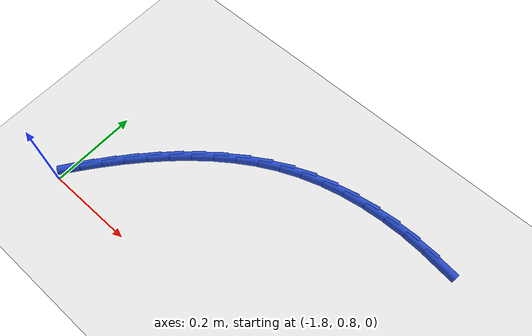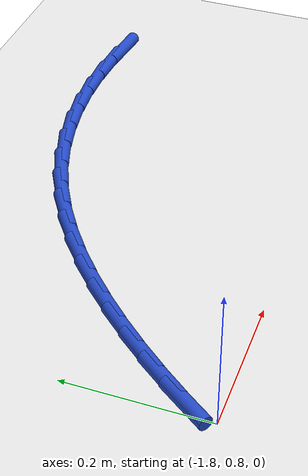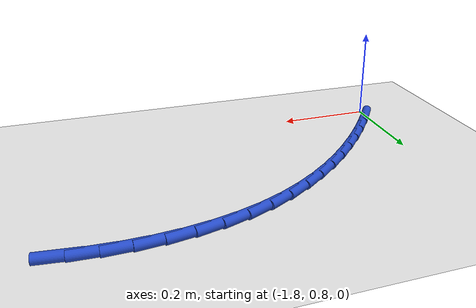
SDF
<sdf version="1.6">
 <world name="default">
  <model name="ground_plane">
   <static>1</static>
   <link name="link">
    <collision name="collision">
     <geometry><plane><normal>0 0 1</normal><size>100 100</size></plane></geometry>
     <surface><friction><ode><mu>100</mu><mu2>50</mu2></ode></friction></surface>
    </collision>
    <visual name="visual">
     <cast_shadows>0</cast_shadows>
     <geometry><plane><normal>0 0 1</normal><size>100 100</size></plane></geometry>
     <material>
      <script><uri>file://media/materials/scripts/gazebo.material</uri><name>Gazebo/WhiteGlow</name></script>
     </material>
    </visual>
   </link>
  </model>
  <model name="line">
   <link name="link_35">
    <pose>-1.0789610331167172 1.1902002941522312 0.01 0 1.57 -0.11067029161736543</pose>
    <collision name="collision">
     <geometry><cylinder><radius>0.01</radius><length>0.08</length></cylinder></geometry>
    </collision>
    <visual name="visual">
     <material>
      <script><name>Gazebo/Blue</name><uri>file://media/materials/scripts/gazebo.material</uri></script>
     </material>
     <geometry><cylinder><radius>0.01</radius><length>0.08</length></cylinder></geometry>
    </visual>
   </link>
   <link name="link_36">
    <pose>-1.1291582479229436 1.1957784266648555 0.01 0 1.57 -0.04381117464663719</pose>
    <collision name="collision">
     <geometry><cylinder><radius>0.01</radius><length>0.08</length></cylinder></geometry>
    </collision>
    <visual name="visual">
     <material>
      <script><name>Gazebo/Blue</name><uri>file://media/materials/scripts/gazebo.material</uri></script>
     </material>
     <geometry><cylinder><radius>0.01</radius><length>0.08</length></cylinder></geometry>
    </visual>
   </link>
   <link name="link_37">
    <pose>-1.1795875536789868 1.1979892084398718 0.01 0 1.57 0.024681208804191484</pose>
    <collision name="collision">
     <geometry><cylinder><radius>0.01</radius><length>0.08</length></cylinder></geometry>
    </collision>
    <visual name="visual">
     <material>
      <script><name>Gazebo/Blue</name><uri>file://media/materials/scripts/gazebo.material</uri></script>
     </material>
     <geometry><cylinder><radius>0.01</radius><length>0.08</length></cylinder></geometry>
    </visual>
   </link>
   <link name="link_38">
    <pose>-1.2299096027716079 1.196746947182372 0.01 0 1.57 0.09556672202371244</pose>
    <collision name="collision">
     <geometry><cylinder><radius>0.01</radius><length>0.08</length></cylinder></geometry>
    </collision>
    <visual name="visual">
     <material>
      <script><name>Gazebo/Blue</name><uri>file://media/materials/scripts/gazebo.material</uri></script>
     </material>
     <geometry><cylinder><radius>0.01</radius><length>0.08</length></cylinder></geometry>
    </visual>
   </link>
   <link name="link_39">
    <pose>-1.2797850475875692 1.1919659505974478 0.01 0 1.57 0.169582007312785</pose>
    <collision name="collision">
     <geometry><cylinder><radius>0.01</radius><length>0.08</length></cylinder></geometry>
    </collision>
    <visual name="visual">
     <material>
      <script><name>Gazebo/Blue</name><uri>file://media/materials/scripts/gazebo.material</uri></script>
     </material>
     <geometry><cylinder><radius>0.01</radius><length>0.08</length></cylinder></geometry>
    </visual>
   </link>
   <link name="link_40">
    <pose>-1.3288745405136315 1.183560526390192 0.01 0 1.57 0.2474200830752982</pose>
    <collision name="collision">
     <geometry><cylinder><radius>0.01</radius><length>0.08</length></cylinder></geometry>
    </collision>
    <visual name="visual">
     <material>
      <script><name>Gazebo/Blue</name><uri>file://media/materials/scripts/gazebo.material</uri></script>
     </material>
     <geometry><cylinder><radius>0.01</radius><length>0.08</length></cylinder></geometry>
    </visual>
   </link>
   <link name="link_41">
    <pose>-1.3768387339365566 1.1714449822656958 0.01 0 1.57 0.32969403792582797</pose>
    <collision name="collision">
     <geometry><cylinder><radius>0.01</radius><length>0.08</length></cylinder></geometry>
    </collision>
    <visual name="visual">
     <material>
      <script><name>Gazebo/Blue</name><uri>file://media/materials/scripts/gazebo.material</uri></script>
     </material>
     <geometry><cylinder><radius>0.01</radius><length>0.08</length></cylinder></geometry>
    </visual>
   </link>
   <link name="link_42">
    <pose>-1.4233382802431054 1.155533625929051 0.01 0 1.57 0.41639448822839126</pose>
    <collision name="collision">
     <geometry><cylinder><radius>0.01</radius><length>0.08</length></cylinder></geometry>
    </collision>
    <visual name="visual">
     <material>
      <script><name>Gazebo/Blue</name><uri>file://media/materials/scripts/gazebo.material</uri></script>
     </material>
     <geometry><cylinder><radius>0.01</radius><length>0.08</length></cylinder></geometry>
    </visual>
   </link>
   <link name="link_43">
    <pose>-1.468048263827069 1.1357604152171277 0.01 0 1.57 0.5007324691013504</pose>
    <collision name="collision">
     <geometry><cylinder><radius>0.01</radius><length>0.08</length></cylinder></geometry>
    </collision>
    <visual name="visual">
     <material>
      <script><name>Gazebo/Blue</name><uri>file://media/materials/scripts/gazebo.material</uri></script>
     </material>
     <geometry><cylinder><radius>0.01</radius><length>0.08</length></cylinder></geometry>
    </visual>
   </link>
   <link name="link_44">
    <pose>-1.510848371427963 1.1123378875882837 0.01 0 1.57 0.5772904926550719</pose>
    <collision name="collision">
     <geometry><cylinder><radius>0.01</radius><length>0.08</length></cylinder></geometry>
    </collision>
    <visual name="visual">
     <material>
      <script><name>Gazebo/Blue</name><uri>file://media/materials/scripts/gazebo.material</uri></script>
     </material>
     <geometry><cylinder><radius>0.01</radius><length>0.08</length></cylinder></geometry>
    </visual>
   </link>
   <link name="link_45">
    <pose>-1.5517701859929471 1.0856853972305751 0.01 0 1.57 0.6459397193873888</pose>
    <collision name="collision">
     <geometry><cylinder><radius>0.01</radius><length>0.08</length></cylinder></geometry>
    </collision>
    <visual name="visual">
     <material>
      <script><name>Gazebo/Blue</name><uri>file://media/materials/scripts/gazebo.material</uri></script>
     </material>
     <geometry><cylinder><radius>0.01</radius><length>0.08</length></cylinder></geometry>
    </visual>
   </link>
   <link name="link_46">
    <pose>-1.5908488871828812 1.0562271954955658 0.01 0 1.57 0.7069734357951066</pose>
    <collision name="collision">
     <geometry><cylinder><radius>0.01</radius><length>0.08</length></cylinder></geometry>
    </collision>
    <visual name="visual">
     <material>
      <script><name>Gazebo/Blue</name><uri>file://media/materials/scripts/gazebo.material</uri></script>
     </material>
     <geometry><cylinder><radius>0.01</radius><length>0.08</length></cylinder></geometry>
    </visual>
   </link>
   <link name="link_47">
    <pose>-1.6281196546586256 1.0243875337348196 0.01 0 1.57 0.7608537630905128</pose>
    <collision name="collision">
     <geometry><cylinder><radius>0.01</radius><length>0.08</length></cylinder></geometry>
    </collision>
    <visual name="visual">
     <material>
      <script><name>Gazebo/Blue</name><uri>file://media/materials/scripts/gazebo.material</uri></script>
     </material>
     <geometry><cylinder><radius>0.01</radius><length>0.08</length></cylinder></geometry>
    </visual>
   </link>
   <link name="link_48">
    <pose>-1.663617668081039 0.9905906632998982 0.01 0 1.57 0.8081093058366904</pose>
    <collision name="collision">
     <geometry><cylinder><radius>0.01</radius><length>0.08</length></cylinder></geometry>
    </collision>
    <visual name="visual">
     <material>
      <script><name>Gazebo/Blue</name><uri>file://media/materials/scripts/gazebo.material</uri></script>
     </material>
     <geometry><cylinder><radius>0.01</radius><length>0.08</length></cylinder></geometry>
    </visual>
   </link>
   <link name="link_49">
    <pose>-1.6973781071109797 0.9552608355423652 0.01 0 1.57 0.8495767584016871</pose>
    <collision name="collision">
     <geometry><cylinder><radius>0.01</radius><length>0.08</length></cylinder></geometry>
    </collision>
    <visual name="visual">
     <material>
      <script><name>Gazebo/Blue</name><uri>file://media/materials/scripts/gazebo.material</uri></script>
     </material>
     <geometry><cylinder><radius>0.01</radius><length>0.08</length></cylinder></geometry>
    </visual>
   </link>
   <link name="link_50">
    <pose>-1.7294510966208987 0.9187822520052912 0.01 0 1.57 0.8873133953211949</pose>
    <collision name="collision">
     <geometry><cylinder><radius>0.01</radius><length>0.08</length></cylinder></geometry>
    </collision>
    <visual name="visual">
     <material>
      <script><name>Gazebo/Blue</name><uri>file://media/materials/scripts/gazebo.material</uri></script>
     </material>
     <geometry><cylinder><radius>0.01</radius><length>0.08</length></cylinder></geometry>
    </visual>
   </link>
   <link name="link_51">
    <pose>-1.7599742283656894 0.8813047226428199 0.01 0 1.57 0.9217562369393135</pose>
    <collision name="collision">
     <geometry><cylinder><radius>0.01</radius><length>0.08</length></cylinder></geometry>
    </collision>
    <visual name="visual">
     <material>
      <script><name>Gazebo/Blue</name><uri>file://media/materials/scripts/gazebo.material</uri></script>
     </material>
     <geometry><cylinder><radius>0.01</radius><length>0.08</length></cylinder></geometry>
    </visual>
   </link>
   <link name="link_52">
    <pose>-1.7891168188324325 0.8428930422561897 0.01 0 1.57 0.9526834847132468</pose>
    <collision name="collision">
     <geometry><cylinder><radius>0.01</radius><length>0.08</length></cylinder></geometry>
    </collision>
    <visual name="visual">
     <material>
      <script><name>Gazebo/Blue</name><uri>file://media/materials/scripts/gazebo.material</uri></script>
     </material>
     <geometry><cylinder><radius>0.01</radius><length>0.08</length></cylinder></geometry>
    </visual>
   </link>
  </model>
 </world>
</sdf>
